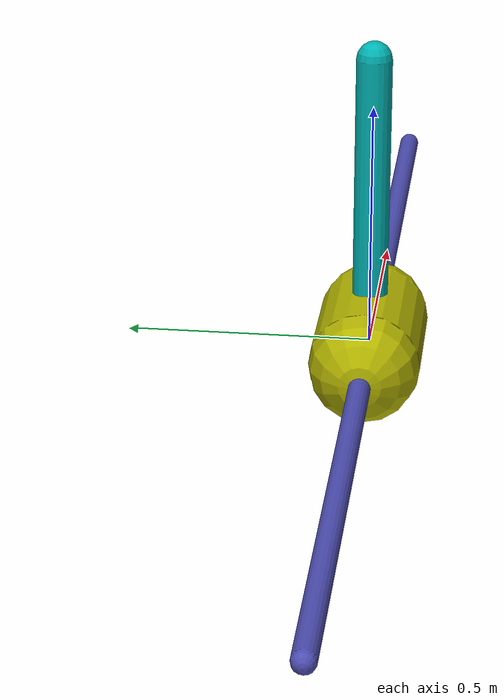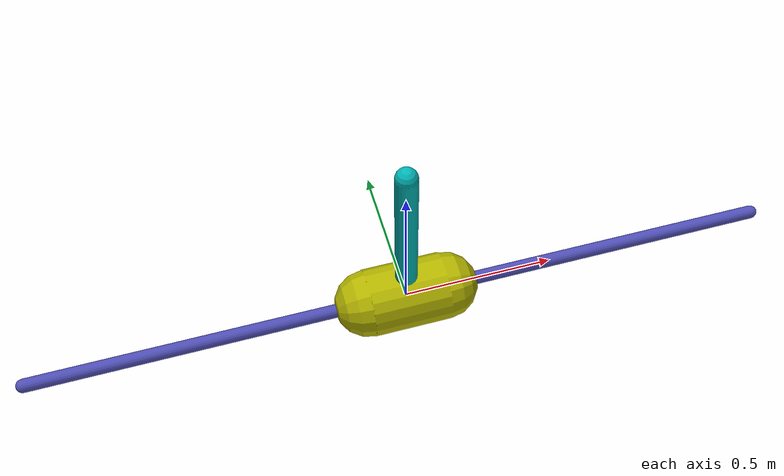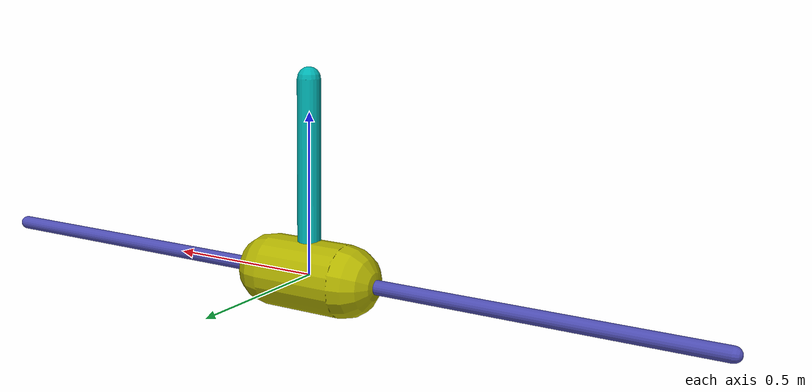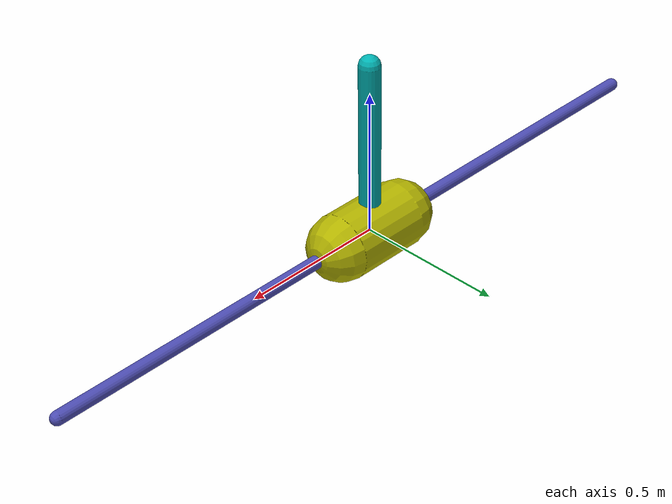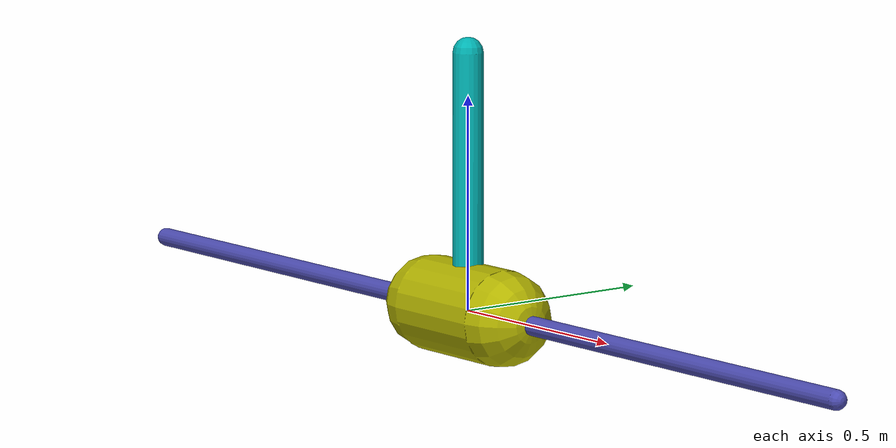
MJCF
<?xml version="1.0" encoding="utf-8"?>
<mujoco model="inverted pendulum">
	<compiler inertiafromgeom="true"></compiler>
	<default>
		<joint armature="0" damping="0.7952030162964128" limited="true"></joint>
		<geom contype="0" friction="1.0782850563677955 0.07014850155329853 0.0743977414621341" rgba="0.7 0.7 0 1"></geom>
		<tendon></tendon>
		<motor ctrlrange="-3 3"></motor>
	</default>
	<option gravity="0 0 -9.81" integrator="RK4" timestep="0.02"></option>
	<size nstack="3000"></size>
	<worldbody>
		<geom name="rail" pos="0 0 0" quat="0.707 0 0.707 0" rgba="0.3 0.3 0.7 1" size="0.022374113718905915 1.243389371221628" type="capsule"></geom>
		<body name="cart" pos="0 0 0">
			<joint axis="1 0 0" limited="true" name="slider" pos="0 0 0" range="-1 1" type="slide"></joint>
			<geom name="cart" pos="0 0 0" quat="0.707 0 0.707 0" size="0.11222038886327604 0.12941688440159457" type="capsule"></geom>
			<body name="pole" pos="0 0 0">
				<joint axis="0 1 0" name="hinge" pos="0 0 0" limited="false" range="-90 90" type="hinge"></joint>
				<geom fromto="0 0 0 0.001 0 0.6" name="cpole" rgba="0 0.7 0.7 1" size="0.035908065237145466 0.362241577359173" type="capsule"></geom>
			</body>
		</body>
	</worldbody>
	<actuator>
		<motor gear="100" joint="slider" name="slide"></motor>
	</actuator>
</mujoco>
